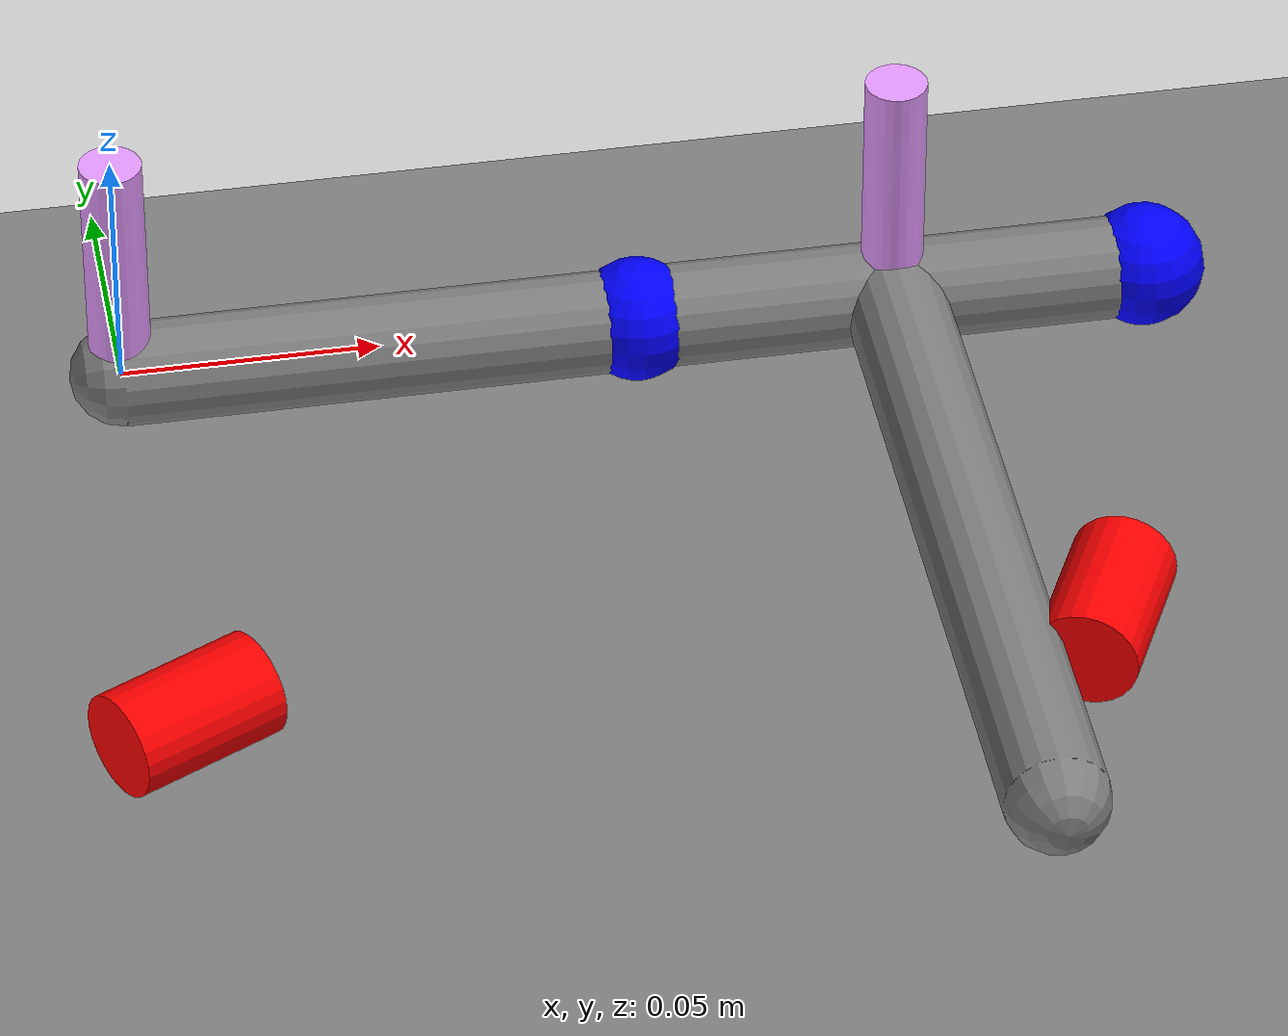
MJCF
<mujoco model="crank-slider">
  <!-- visual properties associated with the crank-slider mechanism -->
  <visual>
    <scale slidercrank=".1"/>
    <rgba slidercrank="0.5 0.4 0.8 1" crankbroken="0.0 0.6 0.2 1"/>
  </visual>

  <!-- defaults for readability (same as MuJoCo example) -->
  <default>
    <position ctrllimited="true" ctrlrange="-.1 .1" kp="30"/>
    <default class="joint">
      <geom type="cylinder" size=".006" fromto="0 0 0 0 0 .05" rgba=".9 .6 1 1"/>
    </default>
    <default class="slidersite">
      <site type="cylinder" size=".01 .015" rgba="1 0 0 1" />
    </default>
    <default class="cranksite">
      <site size=".012" rgba="0 0 1 1" />
    </default>
  </default>

  <worldbody>
    <light pos="0 0 1"/>
    <geom type="plane" size=".5 .5 .01" pos="0 0 -.05"/>
    <!-- keep the original parent slider site (unused in crank-slider) -->
    <site name="slidersite" class="slidersite" pos="0 -.1 0" zaxis="1 .5 0"/>
    <body>
      <joint damping=".1"/>
      <geom class="joint"/>
      <geom type="capsule" size=".01" fromto="0 0 0 .2 0 0"/>
      <site name="cranksite" class="cranksite" pos=".1 0 0"/>
      <site name="cranksite2" class="cranksite" pos=".2 0 0"/>
      <!-- child body carries the slider site for crank-slider configuration -->
      <body pos=".15 0 0">
        <joint damping=".1"/>
        <geom class="joint"/>
        <geom type="capsule" size=".01" fromto="0 -.15 0 0 0 0"/>
        <site name="slidersite2" class="slidersite" pos=".02 -.1 0" zaxis="1 2 0"/>
      </body>
    </body>
  </worldbody>

  <actuator>
    <!-- Crank-slider: slider site attached to the child -->
    <position name="crank-slider" cranksite="cranksite2" slidersite="slidersite2" cranklength=".06"/>
  </actuator>
</mujoco>
